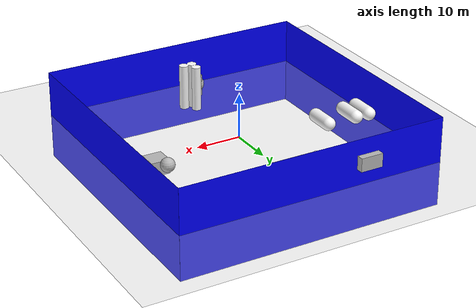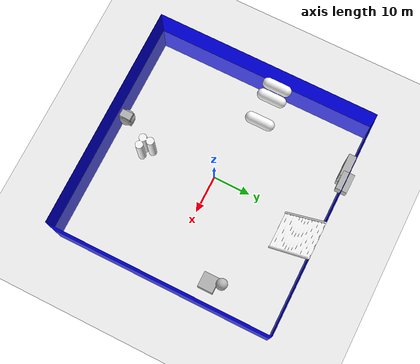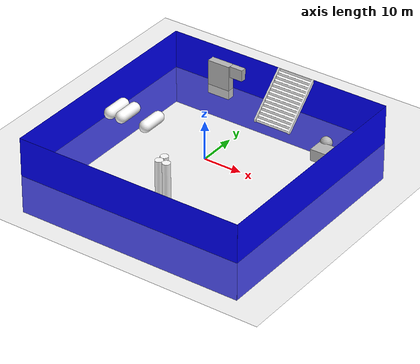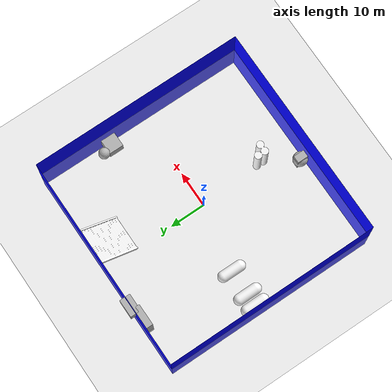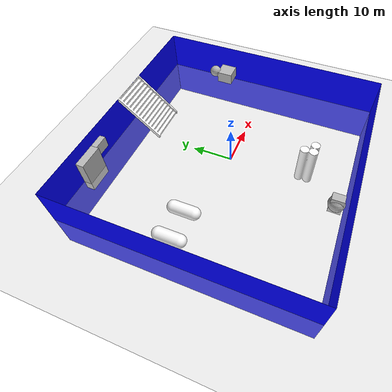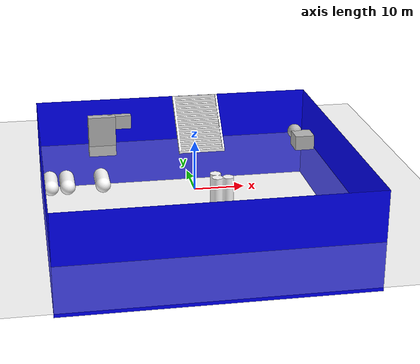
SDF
<sdf version="1.6">
 <world name="empty">
  <physics name="1ms" type="ignored">
   <max_step_size>0.001</max_step_size>
   <real_time_factor>1.0</real_time_factor>
  </physics>
  <plugin filename="ignition-gazebo-contact-system" name="ignition::gazebo::systems::Contact"/>
  <plugin filename="ignition-gazebo-physics-system" name="ignition::gazebo::systems::Physics"/>
  <plugin filename="ignition-gazebo-user-commands-system" name="ignition::gazebo::systems::UserCommands"/>
  <plugin filename="ignition-gazebo-scene-broadcaster-system" name="ignition::gazebo::systems::SceneBroadcaster"/>
  <plugin filename="ignition-gazebo-sensors-system" name="ignition::gazebo::systems::Sensors">
   <render_engine>ogre2</render_engine>
  </plugin>
  <plugin filename="ignition-gazebo-user-commands-system" name="ignition::gazebo::systems::UserCommands"/>
  <light type="directional" name="sun">
   <pose>0 0 10 0 0 0</pose>
   <diffuse>0.8 0.8 0.8 1</diffuse>
   <specular>0.2 0.2 0.2 1</specular>
   <attenuation>
    <range>1000</range>
    <constant>0.9</constant>
    <linear>0.01</linear>
    <quadratic>0.001</quadratic>
   </attenuation>
   <direction>-0.5 0.1 -0.9</direction>
  </light>
  <model name="ground_plane">
   <static>true</static>
   <link name="link">
    <collision name="collision">
     <geometry><plane><normal>0 0 1</normal><size>1000 1000</size></plane></geometry>
    </collision>
    <visual name="visual">
     <geometry><plane><normal>0 0 1</normal><size>1000 1000</size></plane></geometry>
     <material>
      <ambient>0.8 0.8 0.8 1</ambient>
      <diffuse>0.8 0.8 0.8 1</diffuse>
      <specular>0.8 0.8 0.8 1</specular>
     </material>
    </visual>
   </link>
  </model>
  <model name="stair_0">
   <pose>0 20 0 0 0 0</pose>
   <static>true</static>
   <link name="body">
    <visual name="visual">
     <plugin filename="ignition-gazebo-label-system" name="ignition::gazebo::systems::Label">
      <label>50</label>
     </plugin>
     <geometry><mesh><scale>1.0000 1.00000 1.0</scale><uri>meshes/stairs/stairs_0007.dae</uri></mesh></geometry>
     <material>
      <ambient>1.0 1.0 1.0 1</ambient>
      <diffuse>1.0 1.0 1.0 1</diffuse>
      <specular>1.0 1.0 1.0 1</specular>
     </material>
    </visual>
   </link>
  </model>
  <model name="tank">
   <pose>-30 0 0 0 0 0</pose>
   <static>true</static>
   <link name="body">
    <visual name="visual">
     <plugin filename="ignition-gazebo-label-system" name="ignition::gazebo::systems::Label">
      <label>150</label>
     </plugin>
     <geometry><mesh><scale>0.1 0.1 0.1</scale><uri>meshes/tanks/tank_20.STL</uri></mesh></geometry>
     <material>
      <ambient>1.0 1.0 1.0 1</ambient>
      <diffuse>1.0 1.0 1.0 1</diffuse>
      <specular>1.0 1.0 1.0 1</specular>
     </material>
    </visual>
   </link>
  </model>
  <model name="chimney">
   <pose>0 -20 0 0 0 0</pose>
   <static>true</static>
   <link name="body">
    <visual name="visual">
     <plugin filename="ignition-gazebo-label-system" name="ignition::gazebo::systems::Label">
      <label>100</label>
     </plugin>
     <geometry><mesh><scale>0.1 0.1 0.1</scale><uri>meshes/chimneys/chimney_20.STL</uri></mesh></geometry>
     <material>
      <ambient>1.0 1.0 1.0 1</ambient>
      <diffuse>1.0 1.0 1.0 1</diffuse>
      <specular>1.0 1.0 1.0 1</specular>
     </material>
    </visual>
   </link>
  </model>
  <model name="wall">
   <static>true</static>
   <pose>30 0 0 0 0 0</pose>
   <link name="box">
    <inertial>
     <mass>1.14395</mass>
     <inertia>
      <ixx>9.532917</ixx>
      <ixy>0</ixy>
      <ixz>0</ixz>
      <iyy>0.023832</iyy>
      <iyz>0</iyz>
      <izz>9.556749</izz>
     </inertia>
    </inertial>
    <visual name="visual">
     <geometry><box><size>0.01 60.0 20.0</size></box></geometry>
     <material>
      <ambient>0.0 0.0 1.0 1</ambient>
      <diffuse>0.0 0.0 1.0 1</diffuse>
      <specular>0.0 0.0 1.0 1</specular>
     </material>
    </visual>
    <collision name="collision"><geometry><box><size>0.5 10.0 2.0</size></box></geometry></collision>
    <sensor name="sensor_contact" type="contact"><contact><collision>collision</collision></contact></sensor>
   </link>
   <plugin filename="ignition-gazebo-touchplugin-system" name="ignition::gazebo::systems::TouchPlugin">
    <target>vehicle_blue</target>
    <namespace>wall</namespace>
    <time>0.001</time>
    <enabled>true</enabled>
   </plugin>
  </model>
  <model name="wall2">
   <static>true</static>
   <pose>0 30 0 0 0 0</pose>
   <link name="box">
    <inertial>
     <mass>1.14395</mass>
     <inertia>
      <ixx>9.532917</ixx>
      <ixy>0</ixy>
      <ixz>0</ixz>
      <iyy>0.023832</iyy>
      <iyz>0</iyz>
      <izz>9.556749</izz>
     </inertia>
    </inertial>
    <visual name="visual">
     <geometry><box><size>60.0 0.01 20.0</size></box></geometry>
     <material>
      <ambient>0.0 0.0 1.0 1</ambient>
      <diffuse>0.0 0.0 1.0 1</diffuse>
      <specular>0.0 0.0 1.0 1</specular>
     </material>
    </visual>
    <collision name="collision"><geometry><box><size>0.5 10.0 2.0</size></box></geometry></collision>
    <sensor name="sensor_contact" type="contact"><contact><collision>collision</collision></contact></sensor>
   </link>
   <plugin filename="ignition-gazebo-touchplugin-system" name="ignition::gazebo::systems::TouchPlugin">
    <target>vehicle_blue</target>
    <namespace>wall</namespace>
    <time>0.001</time>
    <enabled>true</enabled>
   </plugin>
  </model>
  <model name="wall3">
   <static>true</static>
   <pose>-30 0 0 0 0 0</pose>
   <link name="box">
    <inertial>
     <mass>1.14395</mass>
     <inertia>
      <ixx>9.532917</ixx>
      <ixy>0</ixy>
      <ixz>0</ixz>
      <iyy>0.023832</iyy>
      <iyz>0</iyz>
      <izz>9.556749</izz>
     </inertia>
    </inertial>
    <visual name="visual">
     <geometry><box><size>0.01 60.0 20.0</size></box></geometry>
     <material>
      <ambient>0.0 0.0 1.0 1</ambient>
      <diffuse>0.0 0.0 1.0 1</diffuse>
      <specular>0.0 0.0 1.0 1</specular>
     </material>
    </visual>
    <collision name="collision"><geometry><box><size>0.5 10.0 2.0</size></box></geometry></collision>
    <sensor name="sensor_contact" type="contact"><contact><collision>collision</collision></contact></sensor>
   </link>
   <plugin filename="ignition-gazebo-touchplugin-system" name="ignition::gazebo::systems::TouchPlugin">
    <target>vehicle_blue</target>
    <namespace>wall</namespace>
    <time>0.001</time>
    <enabled>true</enabled>
   </plugin>
  </model>
  <model name="wall4">
   <static>true</static>
   <pose>0 -30 0 0 0 0</pose>
   <link name="box">
    <inertial>
     <mass>1.14395</mass>
     <inertia>
      <ixx>9.532917</ixx>
      <ixy>0</ixy>
      <ixz>0</ixz>
      <iyy>0.023832</iyy>
      <iyz>0</iyz>
      <izz>9.556749</izz>
     </inertia>
    </inertial>
    <visual name="visual">
     <geometry><box><size>60.0 0.01 20.0</size></box></geometry>
     <material>
      <ambient>0.0 0.0 1.0 1</ambient>
      <diffuse>0.0 0.0 1.0 1</diffuse>
      <specular>0.0 0.0 1.0 1</specular>
     </material>
    </visual>
    <collision name="collision"><geometry><box><size>0.5 10.0 2.0</size></box></geometry></collision>
    <sensor name="sensor_contact" type="contact"><contact><collision>collision</collision></contact></sensor>
   </link>
   <plugin filename="ignition-gazebo-touchplugin-system" name="ignition::gazebo::systems::TouchPlugin">
    <target>vehicle_blue</target>
    <namespace>wall</namespace>
    <time>0.001</time>
    <enabled>true</enabled>
   </plugin>
  </model>
  <model name="box">
   <link name="link">
    <pose>-16 29 2 0 0 0</pose>
    <visual name="visual">
     <plugin filename="ignition-gazebo-label-system" name="ignition::gazebo::systems::Label">
      <label>10</label>
     </plugin>
     <geometry><box><size>6 2 9</size></box></geometry>
    </visual>
    <collision name="collision"><geometry><box><size>6 2 9</size></box></geometry></collision>
   </link>
  </model>
  <model name="sphere">
   <link name="link">
    <pose>-16 29 2 0 0 0</pose>
    <visual name="visual">
     <plugin filename="ignition-gazebo-label-system" name="ignition::gazebo::systems::Label">
      <label>10</label>
     </plugin>
     <geometry><sphere><radius>0</radius></sphere></geometry>
    </visual>
    <collision name="collision"><geometry><sphere><radius>0</radius></sphere></geometry></collision>
   </link>
  </model>
  <model name="box2">
   <link name="link">
    <pose>25 11 5 0 0 0</pose>
    <visual name="visual">
     <plugin filename="ignition-gazebo-label-system" name="ignition::gazebo::systems::Label">
      <label>10</label>
     </plugin>
     <geometry><box><size>4 4 3</size></box></geometry>
    </visual>
    <collision name="collision"><geometry><box><size>4 4 3</size></box></geometry></collision>
   </link>
  </model>
  <model name="sphere2">
   <link name="link">
    <pose>24 14 6 0 0 0</pose>
    <visual name="visual">
     <plugin filename="ignition-gazebo-label-system" name="ignition::gazebo::systems::Label">
      <label>10</label>
     </plugin>
     <geometry><sphere><radius>1.5</radius></sphere></geometry>
    </visual>
    <collision name="collision"><geometry><sphere><radius>1.5</radius></sphere></geometry></collision>
   </link>
  </model>
  <model name="box3">
   <link name="link">
    <pose>-4 -27 1 0 0 0</pose>
    <visual name="visual">
     <plugin filename="ignition-gazebo-label-system" name="ignition::gazebo::systems::Label">
      <label>10</label>
     </plugin>
     <geometry><box><size>2 3 5</size></box></geometry>
    </visual>
    <collision name="collision"><geometry><box><size>2 3 5</size></box></geometry></collision>
   </link>
  </model>
  <model name="sphere3">
   <link name="link">
    <pose>-4 -27 1 0 0 0</pose>
    <visual name="visual">
     <plugin filename="ignition-gazebo-label-system" name="ignition::gazebo::systems::Label">
      <label>10</label>
     </plugin>
     <geometry><sphere><radius>2</radius></sphere></geometry>
    </visual>
    <collision name="collision"><geometry><sphere><radius>2</radius></sphere></geometry></collision>
   </link>
  </model>
  <model name="box4">
   <link name="link">
    <pose>-12 30 5 0 0 0</pose>
    <visual name="visual">
     <plugin filename="ignition-gazebo-label-system" name="ignition::gazebo::systems::Label">
      <label>10</label>
     </plugin>
     <geometry><box><size>5 3 3</size></box></geometry>
    </visual>
    <collision name="collision"><geometry><box><size>5 3 3</size></box></geometry></collision>
   </link>
  </model>
  <model name="sphere4">
   <link name="link">
    <pose>-12 30 5 0 0 0</pose>
    <visual name="visual">
     <plugin filename="ignition-gazebo-label-system" name="ignition::gazebo::systems::Label">
      <label>10</label>
     </plugin>
     <geometry><sphere><radius>1</radius></sphere></geometry>
    </visual>
    <collision name="collision"><geometry><sphere><radius>1</radius></sphere></geometry></collision>
   </link>
  </model>
 </world>
</sdf>
